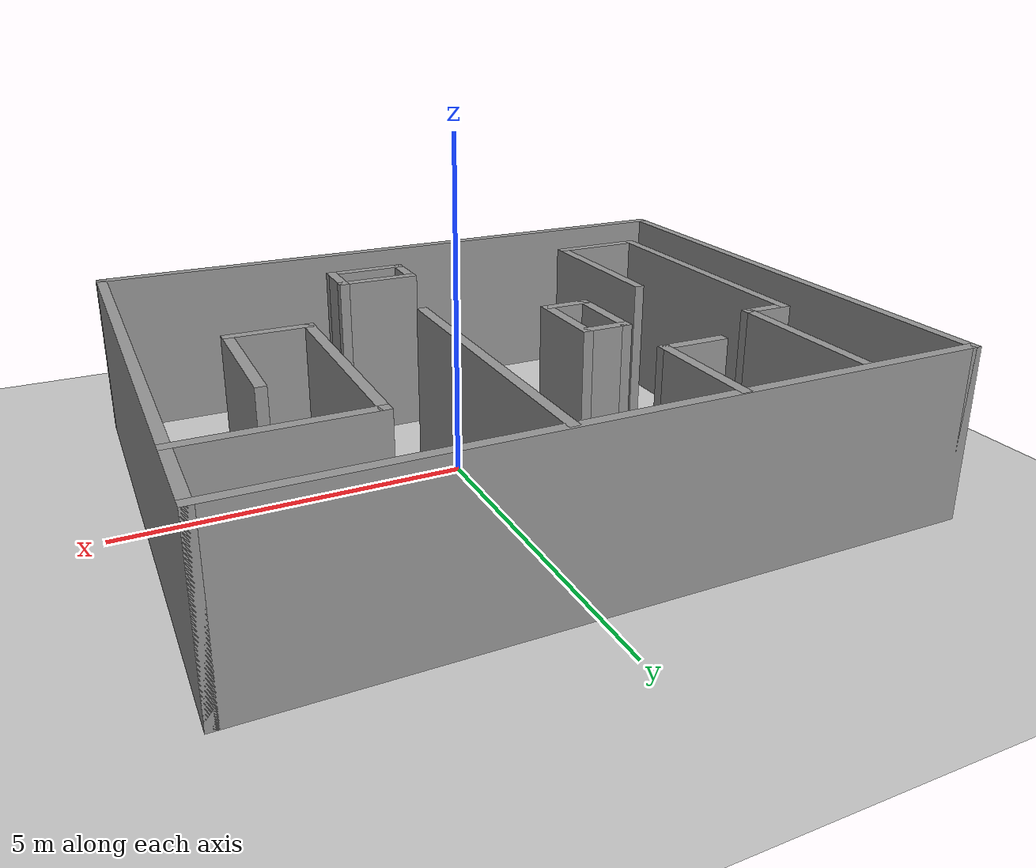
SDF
<sdf version="1.7">
 <world name="default">
  <light name="sun" type="directional">
   <pose>0 0 10 0 -0 0</pose>
   <diffuse>0.8 0.8 0.8 1</diffuse>
   <specular>0.2 0.2 0.2 1</specular>
   <attenuation>
    <range>1000</range>
    <constant>0.9</constant>
    <linear>0.01</linear>
    <quadratic>0.001</quadratic>
   </attenuation>
   <direction>-0.5 0.1 -0.9</direction>
   <spot><inner_angle>0</inner_angle><outer_angle>0</outer_angle><falloff>0</falloff></spot>
  </light>
  <model name="ground_plane">
   <static>1</static>
   <link name="link">
    <collision name="collision">
     <geometry><plane><normal>0 0 1</normal><size>100 100</size></plane></geometry>
     <surface><friction><ode><mu>100</mu><mu2>50</mu2></ode></friction></surface>
    </collision>
    <visual name="visual">
     <cast_shadows>0</cast_shadows>
     <geometry><plane><normal>0 0 1</normal><size>100 100</size></plane></geometry>
     <material>
      <script><uri>file://media/materials/scripts/gazebo.material</uri><name>Gazebo/Grey</name></script>
     </material>
    </visual>
   </link>
  </model>
  <gravity>0 0 -9.8</gravity>
  <magnetic_field>6e-06 2.3e-05 -4.2e-05</magnetic_field>
  <atmosphere type="adiabatic"/>
  <physics type="ode">
   <max_step_size>0.001</max_step_size>
   <real_time_factor>1</real_time_factor>
   <real_time_update_rate>1000</real_time_update_rate>
  </physics>
  <scene><ambient>0.4 0.4 0.4 1</ambient><background>0.7 0.7 0.7 1</background><shadows>1</shadows></scene>
  <spherical_coordinates>
   <surface_model>EARTH_WGS84</surface_model>
   <latitude_deg>0</latitude_deg>
   <longitude_deg>0</longitude_deg>
   <elevation>0</elevation>
   <heading_deg>0</heading_deg>
  </spherical_coordinates>
  <model name="demo1_0">
   <pose>-0.353835 0.196094 0 0 -0 0</pose>
   <link name="Wall_10">
    <collision name="Wall_10_Collision">
     <geometry><box><size>1.25 0.15 2.5</size></box></geometry>
     <pose>0 0 1.25 0 -0 0</pose>
    </collision>
    <visual name="Wall_10_Visual">
     <pose>0 0 1.25 0 -0 0</pose>
     <geometry><box><size>1.25 0.15 2.5</size></box></geometry>
     <material>
      <script><uri>file://media/materials/scripts/gazebo.material</uri><name>Gazebo/Grey</name></script>
      <ambient>1 1 1 1</ambient>
     </material>
     <meta><layer>0</layer></meta>
    </visual>
    <pose>-1.49791 0.736372 0 0 -0 -1.5708</pose>
   </link>
   <link name="Wall_11">
    <collision name="Wall_11_Collision">
     <geometry><box><size>0.75 0.15 2.5</size></box></geometry>
     <pose>0 0 1.25 0 -0 0</pose>
    </collision>
    <visual name="Wall_11_Visual">
     <pose>0 0 1.25 0 -0 0</pose>
     <geometry><box><size>0.75 0.15 2.5</size></box></geometry>
     <material>
      <script><uri>file://media/materials/scripts/gazebo.material</uri><name>Gazebo/Grey</name></script>
      <ambient>1 1 1 1</ambient>
     </material>
     <meta><layer>0</layer></meta>
    </visual>
    <pose>-1.19791 0.186372 0 0 -0 0</pose>
   </link>
   <link name="Wall_12">
    <collision name="Wall_12_Collision">
     <geometry><box><size>1.25 0.15 2.5</size></box></geometry>
     <pose>0 0 1.25 0 -0 0</pose>
    </collision>
    <visual name="Wall_12_Visual">
     <pose>0 0 1.25 0 -0 0</pose>
     <geometry><box><size>1.25 0.15 2.5</size></box></geometry>
     <material>
      <script><uri>file://media/materials/scripts/gazebo.material</uri><name>Gazebo/Grey</name></script>
      <ambient>1 1 1 1</ambient>
     </material>
     <meta><layer>0</layer></meta>
    </visual>
    <pose>-0.897907 0.736372 0 0 -0 1.5708</pose>
   </link>
   <link name="Wall_13">
    <collision name="Wall_13_Collision">
     <geometry><box><size>0.75 0.15 2.5</size></box></geometry>
     <pose>0 0 1.25 0 -0 0</pose>
    </collision>
    <visual name="Wall_13_Visual">
     <pose>0 0 1.25 0 -0 0</pose>
     <geometry><box><size>0.75 0.15 2.5</size></box></geometry>
     <material>
      <script><uri>file://media/materials/scripts/gazebo.material</uri><name>Gazebo/Grey</name></script>
      <ambient>1 1 1 1</ambient>
     </material>
     <meta><layer>0</layer></meta>
    </visual>
    <pose>-1.19791 1.28637 0 0 -0 3.14159</pose>
   </link>
   <link name="Wall_15">
    <collision name="Wall_15_Collision">
     <geometry><box><size>2.5 0.15 2.5</size></box></geometry>
     <pose>0 0 1.25 0 -0 0</pose>
    </collision>
    <visual name="Wall_15_Visual">
     <pose>0 0 1.25 0 -0 0</pose>
     <geometry><box><size>2.5 0.15 2.5</size></box></geometry>
     <material>
      <script><uri>file://media/materials/scripts/gazebo.material</uri><name>Gazebo/Grey</name></script>
      <ambient>1 1 1 1</ambient>
     </material>
     <meta><layer>0</layer></meta>
    </visual>
    <pose>-3.399 2.71207 0 0 -0 -1.5708</pose>
   </link>
   <link name="Wall_16">
    <collision name="Wall_16_Collision">
     <geometry><box><size>0.75 0.15 2.5</size></box></geometry>
     <pose>0 0 1.25 0 -0 0</pose>
    </collision>
    <visual name="Wall_16_Visual">
     <pose>0 0 1.25 0 -0 0</pose>
     <geometry><box><size>0.75 0.15 2.5</size></box></geometry>
     <material>
      <script><uri>file://media/materials/scripts/gazebo.material</uri><name>Gazebo/Grey</name></script>
      <ambient>1 1 1 1</ambient>
     </material>
     <meta><layer>0</layer></meta>
    </visual>
    <pose>-3.699 1.53707 0 0 -0 3.14159</pose>
   </link>
   <link name="Wall_17">
    <collision name="Wall_17_Collision">
     <geometry><box><size>4.25 0.15 2.5</size></box></geometry>
     <pose>0 0 1.25 0 -0 0</pose>
    </collision>
    <visual name="Wall_17_Visual">
     <pose>0 0 1.25 0 -0 0</pose>
     <geometry><box><size>4.25 0.15 2.5</size></box></geometry>
     <material>
      <script><uri>file://media/materials/scripts/gazebo.material</uri><name>Gazebo/Grey</name></script>
      <ambient>1 1 1 1</ambient>
     </material>
     <meta><layer>0</layer></meta>
    </visual>
    <pose>-3.999 -0.512932 0 0 -0 -1.5708</pose>
   </link>
   <link name="Wall_18">
    <collision name="Wall_18_Collision">
     <geometry><box><size>1.5 0.15 2.5</size></box></geometry>
     <pose>0 0 1.25 0 -0 0</pose>
    </collision>
    <visual name="Wall_18_Visual">
     <pose>0 0 1.25 0 -0 0</pose>
     <geometry><box><size>1.5 0.15 2.5</size></box></geometry>
     <material>
      <script><uri>file://media/materials/scripts/gazebo.material</uri><name>Gazebo/Grey</name></script>
      <ambient>1 1 1 1</ambient>
     </material>
     <meta><layer>0</layer></meta>
    </visual>
    <pose>-3.324 -2.56293 0 0 -0 0</pose>
   </link>
   <link name="Wall_20">
    <collision name="Wall_20_Collision">
     <geometry><box><size>2.5 0.15 2.5</size></box></geometry>
     <pose>0 0 1.25 0 -0 0</pose>
    </collision>
    <visual name="Wall_20_Visual">
     <pose>0 0 1.25 0 -0 0</pose>
     <geometry><box><size>2.5 0.15 2.5</size></box></geometry>
     <material>
      <script><uri>file://media/materials/scripts/gazebo.material</uri><name>Gazebo/Grey</name></script>
      <ambient>1 1 1 1</ambient>
     </material>
     <meta><layer>0</layer></meta>
    </visual>
    <pose>-2.649 -1.38793 0 0 -0 1.5708</pose>
   </link>
   <link name="Wall_22">
    <collision name="Wall_22_Collision">
     <geometry><box><size>4.5 0.15 2.5</size></box></geometry>
     <pose>0 0 1.25 0 -0 0</pose>
    </collision>
    <visual name="Wall_22_Visual">
     <pose>0 0 1.25 0 -0 0</pose>
     <geometry><box><size>4.5 0.15 2.5</size></box></geometry>
     <material>
      <script><uri>file://media/materials/scripts/gazebo.material</uri><name>Gazebo/Grey</name></script>
      <ambient>1 1 1 1</ambient>
     </material>
     <meta><layer>0</layer></meta>
    </visual>
    <pose>0.752988 1.71207 0 0 -0 -1.5708</pose>
   </link>
   <link name="Wall_24">
    <collision name="Wall_24_Collision">
     <geometry><box><size>1.75 0.15 2.5</size></box></geometry>
     <pose>0 0 1.25 0 -0 0</pose>
    </collision>
    <visual name="Wall_24_Visual">
     <pose>0 0 1.25 0 -0 0</pose>
     <geometry><box><size>1.75 0.15 2.5</size></box></geometry>
     <material>
      <script><uri>file://media/materials/scripts/gazebo.material</uri><name>Gazebo/Grey</name></script>
      <ambient>1 1 1 1</ambient>
     </material>
     <meta><layer>0</layer></meta>
    </visual>
    <pose>-1.4827 3.10228 0 0 -0 -1.5708</pose>
   </link>
   <link name="Wall_25">
    <collision name="Wall_25_Collision">
     <geometry><box><size>1 0.15 2.5</size></box></geometry>
     <pose>0 0 1.25 0 -0 0</pose>
    </collision>
    <visual name="Wall_25_Visual">
     <pose>0 0 1.25 0 -0 0</pose>
     <geometry><box><size>1 0.15 2.5</size></box></geometry>
     <material>
      <script><uri>file://media/materials/scripts/gazebo.material</uri><name>Gazebo/Grey</name></script>
      <ambient>1 1 1 1</ambient>
     </material>
     <meta><layer>0</layer></meta>
    </visual>
    <pose>-1.9077 2.30228 0 0 -0 3.14159</pose>
   </link>
   <link name="Wall_27">
    <collision name="Wall_27_Collision">
     <geometry><box><size>2.5 0.15 2.5</size></box></geometry>
     <pose>0 0 1.25 0 -0 0</pose>
    </collision>
    <visual name="Wall_27_Visual">
     <pose>0 0 1.25 0 -0 0</pose>
     <geometry><box><size>2.5 0.15 2.5</size></box></geometry>
     <material>
      <script><uri>file://media/materials/scripts/gazebo.material</uri><name>Gazebo/Grey</name></script>
      <ambient>1 1 1 1</ambient>
     </material>
     <meta><layer>0</layer></meta>
    </visual>
    <pose>3.58991 2.63681 0 0 -0 3.14159</pose>
   </link>
   <link name="Wall_28">
    <collision name="Wall_28_Collision">
     <geometry><box><size>3.25 0.15 2.5</size></box></geometry>
     <pose>0 0 1.25 0 -0 0</pose>
    </collision>
    <visual name="Wall_28_Visual">
     <pose>0 0 1.25 0 -0 0</pose>
     <geometry><box><size>3.25 0.15 2.5</size></box></geometry>
     <material>
      <script><uri>file://media/materials/scripts/gazebo.material</uri><name>Gazebo/Grey</name></script>
      <ambient>1 1 1 1</ambient>
     </material>
     <meta><layer>0</layer></meta>
    </visual>
    <pose>2.41491 1.08681 0 0 -0 -1.5708</pose>
   </link>
   <link name="Wall_29">
    <collision name="Wall_29_Collision">
     <geometry><box><size>1.25 0.15 2.5</size></box></geometry>
     <pose>0 0 1.25 0 -0 0</pose>
    </collision>
    <visual name="Wall_29_Visual">
     <pose>0 0 1.25 0 -0 0</pose>
     <geometry><box><size>1.25 0.15 2.5</size></box></geometry>
     <material>
      <script><uri>file://media/materials/scripts/gazebo.material</uri><name>Gazebo/Grey</name></script>
      <ambient>1 1 1 1</ambient>
     </material>
     <meta><layer>0</layer></meta>
    </visual>
    <pose>2.96491 -0.463189 0 0 -0 0</pose>
   </link>
   <link name="Wall_3">
    <collision name="Wall_3_Collision">
     <geometry><box><size>10 0.15 2.5</size></box></geometry>
     <pose>0 0 1.25 0 -0 0</pose>
    </collision>
    <visual name="Wall_3_Visual">
     <pose>0 0 1.25 0 -0 0</pose>
     <geometry><box><size>10 0.15 2.5</size></box></geometry>
     <material>
      <script><uri>file://media/materials/scripts/gazebo.material</uri><name>Gazebo/Grey</name></script>
      <ambient>1 1 1 1</ambient>
     </material>
     <meta><layer>0</layer></meta>
    </visual>
    <pose>-0.159722 3.925 0 0 -0 0</pose>
   </link>
   <link name="Wall_30">
    <collision name="Wall_30_Collision">
     <geometry><box><size>2 0.15 2.5</size></box></geometry>
     <pose>0 0 1.25 0 -0 0</pose>
    </collision>
    <visual name="Wall_30_Visual">
     <pose>0 0 1.25 0 -0 0</pose>
     <geometry><box><size>2 0.15 2.5</size></box></geometry>
     <material>
      <script><uri>file://media/materials/scripts/gazebo.material</uri><name>Gazebo/Grey</name></script>
      <ambient>1 1 1 1</ambient>
     </material>
     <meta><layer>0</layer></meta>
    </visual>
    <pose>3.51491 0.46181 0 0 -0 1.5708</pose>
   </link>
   <link name="Wall_32">
    <collision name="Wall_32_Collision">
     <geometry><box><size>0.75 0.15 2.5</size></box></geometry>
     <pose>0 0 1.25 0 -0 0</pose>
    </collision>
    <visual name="Wall_32_Visual">
     <pose>0 0 1.25 0 -0 0</pose>
     <geometry><box><size>0.75 0.15 2.5</size></box></geometry>
     <material>
      <script><uri>file://media/materials/scripts/gazebo.material</uri><name>Gazebo/Grey</name></script>
      <ambient>1 1 1 1</ambient>
     </material>
     <meta><layer>0</layer></meta>
    </visual>
    <pose>0.300544 -2.49935 0 0 -0 -1.5708</pose>
   </link>
   <link name="Wall_33">
    <collision name="Wall_33_Collision">
     <geometry><box><size>1.25 0.15 2.5</size></box></geometry>
     <pose>0 0 1.25 0 -0 0</pose>
    </collision>
    <visual name="Wall_33_Visual">
     <pose>0 0 1.25 0 -0 0</pose>
     <geometry><box><size>1.25 0.15 2.5</size></box></geometry>
     <material>
      <script><uri>file://media/materials/scripts/gazebo.material</uri><name>Gazebo/Grey</name></script>
      <ambient>1 1 1 1</ambient>
     </material>
     <meta><layer>0</layer></meta>
    </visual>
    <pose>0.850544 -2.79935 0 0 -0 0</pose>
   </link>
   <link name="Wall_34">
    <collision name="Wall_34_Collision">
     <geometry><box><size>0.75 0.15 2.5</size></box></geometry>
     <pose>0 0 1.25 0 -0 0</pose>
    </collision>
    <visual name="Wall_34_Visual">
     <pose>0 0 1.25 0 -0 0</pose>
     <geometry><box><size>0.75 0.15 2.5</size></box></geometry>
     <material>
      <script><uri>file://media/materials/scripts/gazebo.material</uri><name>Gazebo/Grey</name></script>
      <ambient>1 1 1 1</ambient>
     </material>
     <meta><layer>0</layer></meta>
    </visual>
    <pose>1.40054 -2.49935 0 0 -0 1.5708</pose>
   </link>
   <link name="Wall_35">
    <collision name="Wall_35_Collision">
     <geometry><box><size>1.25 0.15 2.5</size></box></geometry>
     <pose>0 0 1.25 0 -0 0</pose>
    </collision>
    <visual name="Wall_35_Visual">
     <pose>0 0 1.25 0 -0 0</pose>
     <geometry><box><size>1.25 0.15 2.5</size></box></geometry>
     <material>
      <script><uri>file://media/materials/scripts/gazebo.material</uri><name>Gazebo/Grey</name></script>
      <ambient>1 1 1 1</ambient>
     </material>
     <meta><layer>0</layer></meta>
    </visual>
    <pose>0.850544 -2.19935 0 0 -0 3.14159</pose>
   </link>
   <link name="Wall_6">
    <collision name="Wall_6_Collision">
     <geometry><box><size>8 0.15 2.5</size></box></geometry>
     <pose>0 0 1.25 0 -0 0</pose>
    </collision>
    <visual name="Wall_6_Visual">
     <pose>0 0 1.25 0 -0 0</pose>
     <geometry><box><size>8 0.15 2.5</size></box></geometry>
     <material>
      <script><uri>file://media/materials/scripts/gazebo.material</uri><name>Gazebo/Grey</name></script>
      <ambient>1 1 1 1</ambient>
     </material>
     <meta><layer>0</layer></meta>
    </visual>
    <pose>4.76528 0 0 0 -0 -1.5708</pose>
   </link>
   <link name="Wall_7">
    <collision name="Wall_7_Collision">
     <geometry><box><size>10 0.15 2.5</size></box></geometry>
     <pose>0 0 1.25 0 -0 0</pose>
    </collision>
    <visual name="Wall_7_Visual">
     <pose>0 0 1.25 0 -0 0</pose>
     <geometry><box><size>10 0.15 2.5</size></box></geometry>
     <material>
      <script><uri>file://media/materials/scripts/gazebo.material</uri><name>Gazebo/Grey</name></script>
      <ambient>1 1 1 1</ambient>
     </material>
     <meta><layer>0</layer></meta>
    </visual>
    <pose>-0.159722 -3.925 0 0 -0 3.14159</pose>
   </link>
   <link name="Wall_8">
    <collision name="Wall_8_Collision">
     <geometry><box><size>8 0.15 2.5</size></box></geometry>
     <pose>0 0 1.25 0 -0 0</pose>
    </collision>
    <visual name="Wall_8_Visual">
     <pose>0 0 1.25 0 -0 0</pose>
     <geometry><box><size>8 0.15 2.5</size></box></geometry>
     <material>
      <script><uri>file://media/materials/scripts/gazebo.material</uri><name>Gazebo/Grey</name></script>
      <ambient>1 1 1 1</ambient>
     </material>
     <meta><layer>0</layer></meta>
    </visual>
    <pose>-5.08472 0 0 0 -0 1.5708</pose>
   </link>
   <static>1</static>
  </model>
 </world>
</sdf>
